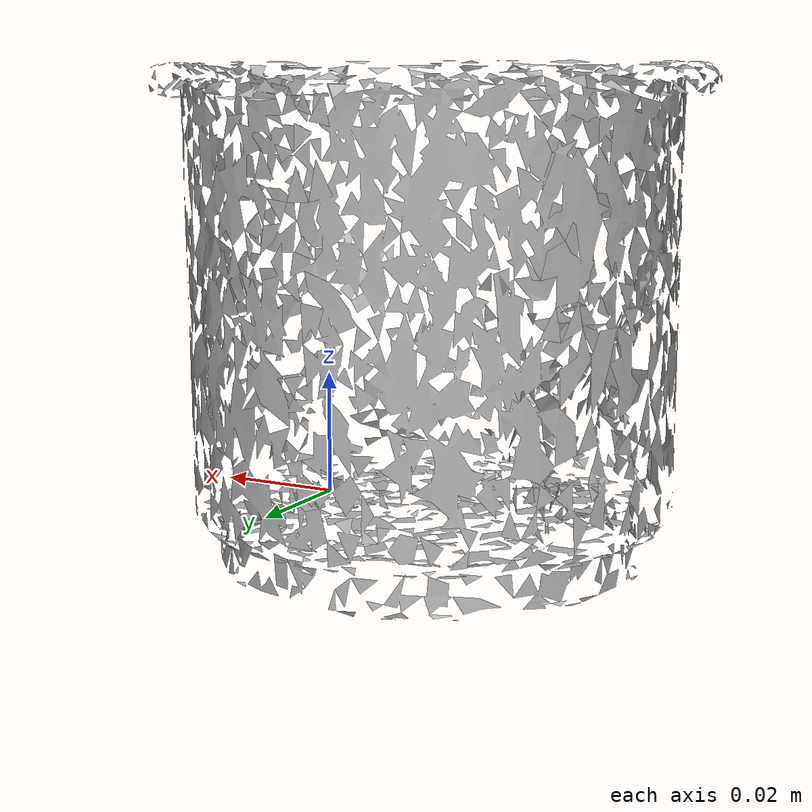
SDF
<?xml version='1.0'?>
<sdf version="1.4">
  <model name="f_cups">
    <static>false</static>
    <link name="link">
      <inertial>
        <pose>-0.03752278249207881 0.024731456379195844 0.03143344870002347 -2.0930923250837314 0.9411196106052447 0.9604650744273882</pose>
        <mass>4.948022931304317e-05</mass>
        <inertia>
          <ixx>5.081972079713401e-08</ixx>
          <ixy>-2.724513687388862e-24</ixy>
          <ixz>-1.321676525932148e-24</ixz>
          <iyy>4.811740055054632e-08</iyy>
          <iyz>5.2749858690947215e-24</iyz>
          <izz>4.36084257680286e-08</izz>
        </inertia>
      </inertial>
      <collision name="collision">
        <geometry>
          <mesh>
            <!-- Use a downsampled mesh for collisions -->
            <uri>model://065-f_cups/downsampled.obj</uri>
	        </mesh>
        </geometry>
        <surface>
      </surface>
      </collision>
      <visual name="visual">
        <geometry>
          <mesh>
            <uri>model://065-f_cups/google_16k/textured.obj</uri>
	        </mesh>
        </geometry>
        <material>
          <script>
            <uri>model://065-f_cups/f_cups.material</uri>
            <name>f_cups</name>
          </script>
        </material>
      </visual>
    </link>
  </model>
</sdf>
